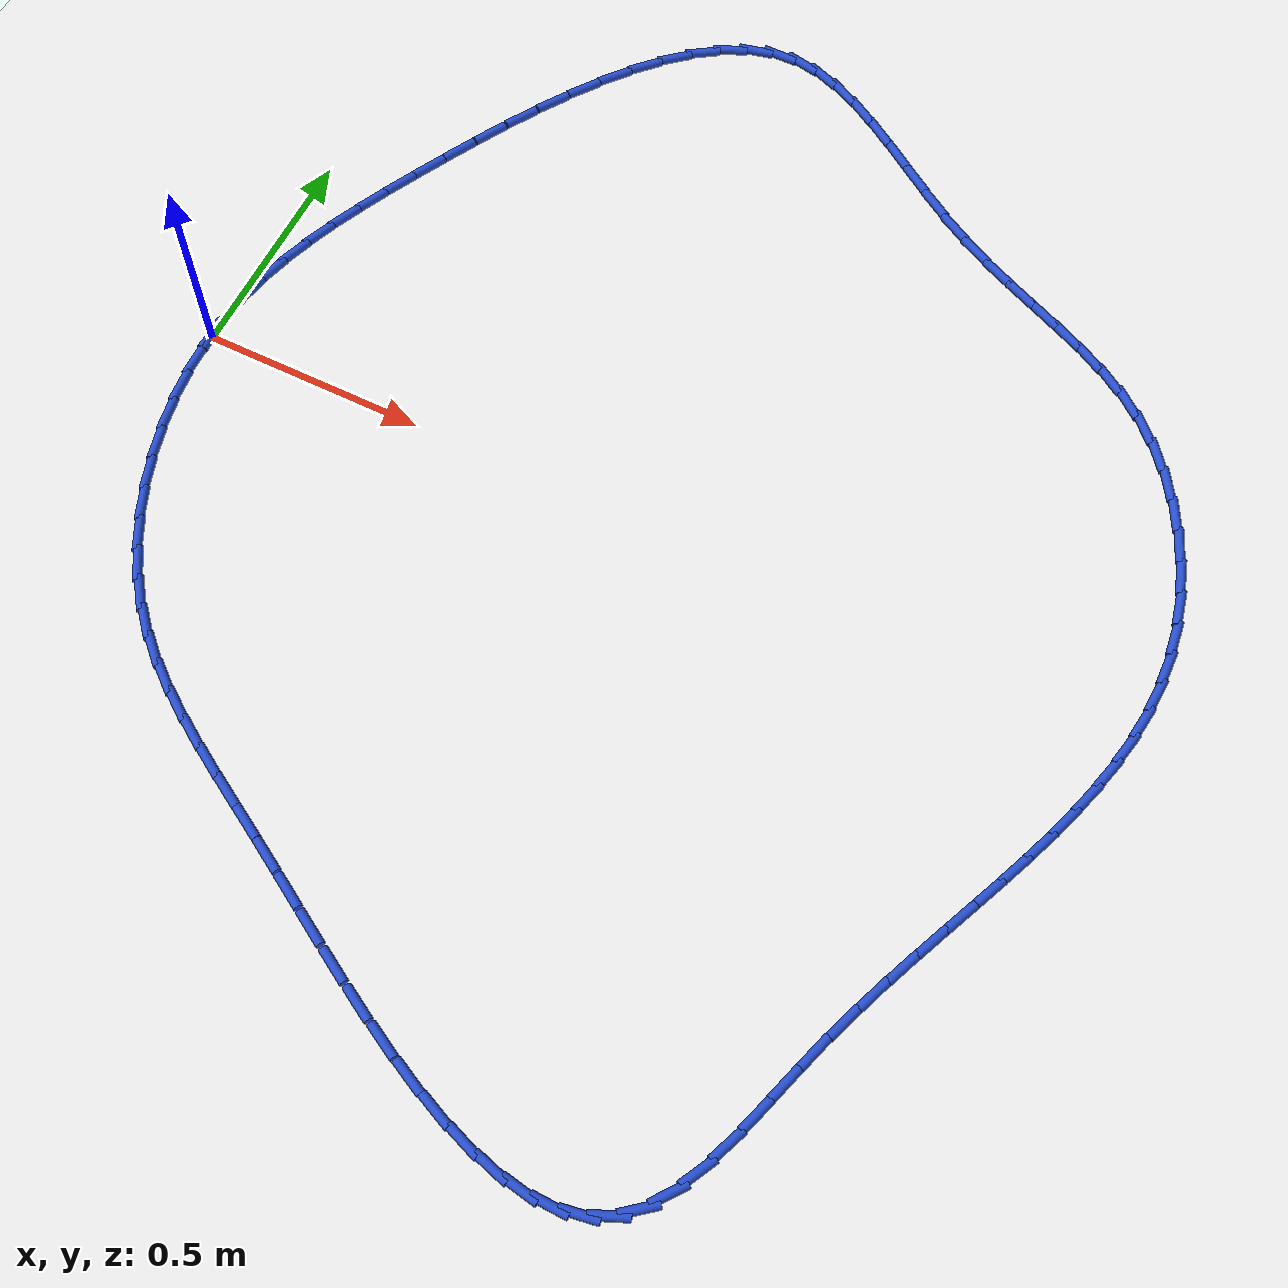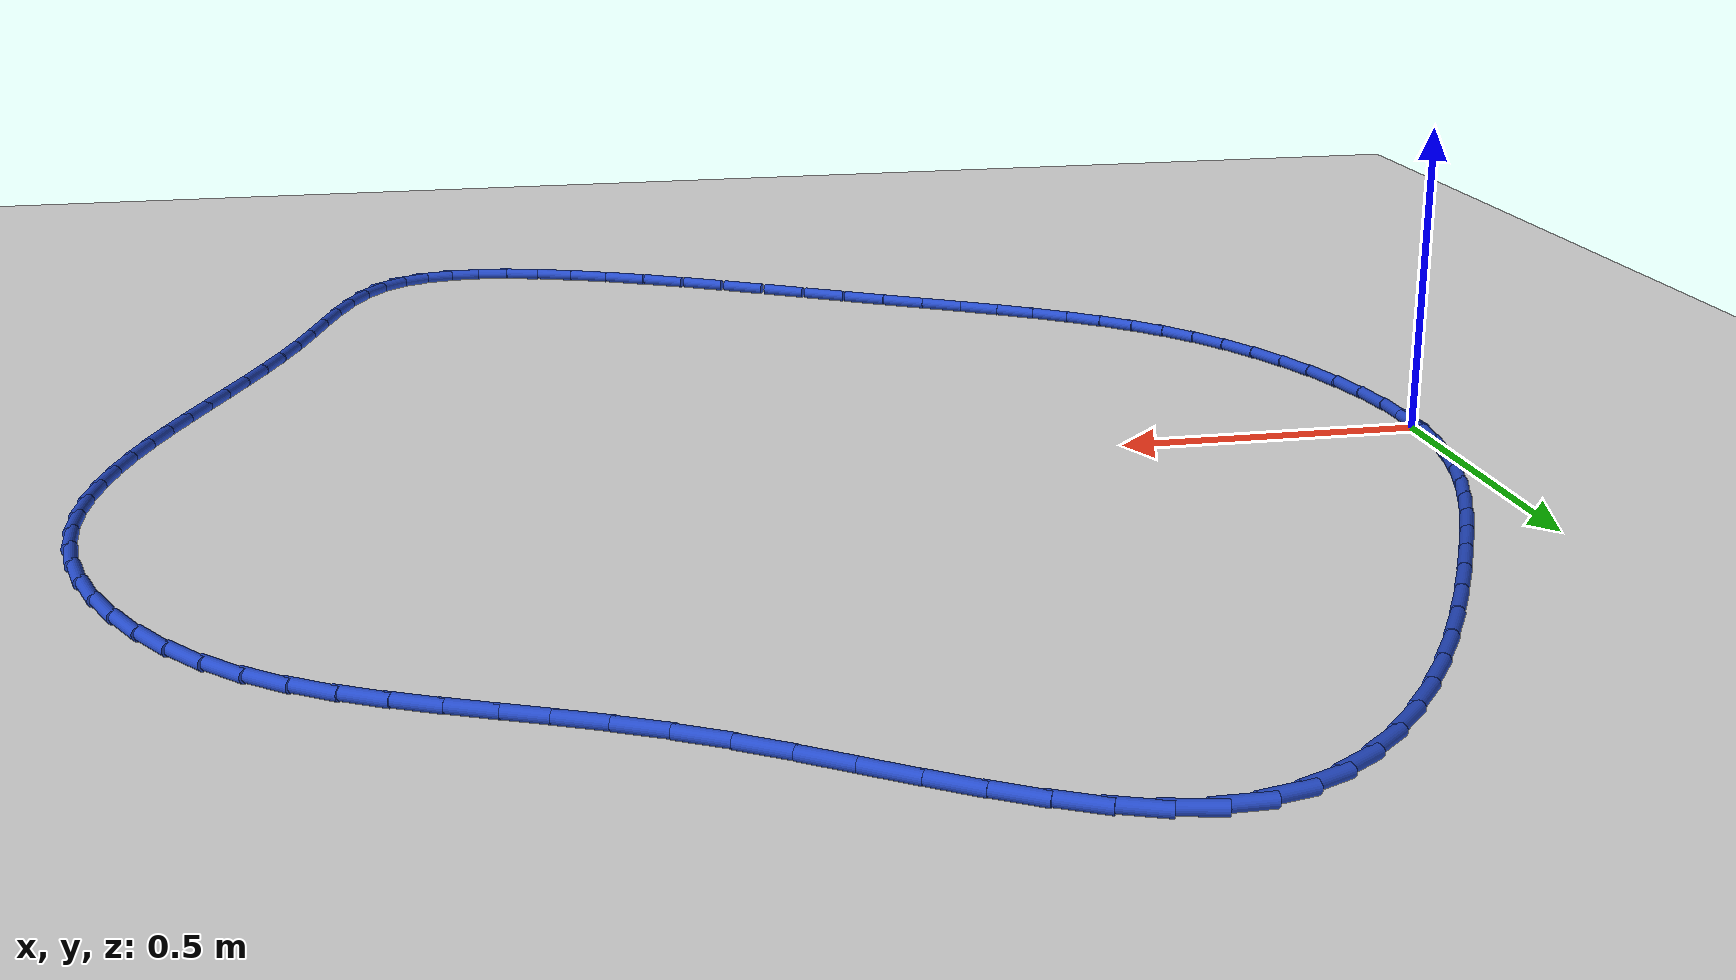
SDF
<sdf version="1.6">
 <world name="default">
  <light name="sun" type="directional">
   <pose>0 0 10 0 -0 0</pose>
   <diffuse>0.8 0.8 0.8 1</diffuse>
   <specular>0.2 0.2 0.2 1</specular>
   <attenuation>
    <range>1000</range>
    <constant>0.9</constant>
    <linear>0.01</linear>
    <quadratic>0.001</quadratic>
   </attenuation>
   <direction>-0.5 0.1 -0.9</direction>
  </light>
  <model name="ground_plane">
   <static>1</static>
   <link name="link">
    <collision name="collision">
     <geometry><plane><normal>0 0 1</normal><size>100 100</size></plane></geometry>
     <surface><friction><ode><mu>100</mu><mu2>50</mu2></ode></friction></surface>
    </collision>
    <visual name="visual">
     <cast_shadows>0</cast_shadows>
     <geometry><plane><normal>0 0 1</normal><size>100 100</size></plane></geometry>
     <material>
      <script><uri>file://media/materials/scripts/gazebo.material</uri><name>Gazebo/WhiteGlow</name></script>
     </material>
    </visual>
   </link>
  </model>
  <gravity>0 0 -9.8</gravity>
  <magnetic_field>6e-06 2.3e-05 -4.2e-05</magnetic_field>
  <atmosphere type="adiabatic"/>
  <physics name="default_physics" default="0" type="ode">
   <max_step_size>0.001</max_step_size>
   <real_time_factor>1</real_time_factor>
   <real_time_update_rate>1000</real_time_update_rate>
  </physics>
  <scene><ambient>0.4 0.4 0.4 1</ambient><background>0.7 0.7 0.7 1</background><shadows>1</shadows></scene>
  <spherical_coordinates>
   <surface_model>EARTH_WGS84</surface_model>
   <latitude_deg>0</latitude_deg>
   <longitude_deg>0</longitude_deg>
   <elevation>0</elevation>
   <heading_deg>0</heading_deg>
  </spherical_coordinates>
  <model name="line">
   <link name="link_0">
    <pose>-8.326672684688674e-17 4.163336342344337e-17 0.01 0 1.57 1.509918617367187</pose>
    <collision name="collision">
     <geometry><cylinder><radius>0.01</radius><length>0.08</length></cylinder></geometry>
    </collision>
    <visual name="visual">
     <material>
      <script><name>Gazebo/Blue</name><uri>file://media/materials/scripts/gazebo.material</uri></script>
     </material>
     <geometry><cylinder><radius>0.01</radius><length>0.08</length></cylinder></geometry>
    </visual>
   </link>
   <link name="link_1">
    <pose>0.004163144845597832 0.06830087086729018 0.01 0 1.57 1.427283603163248</pose>
    <collision name="collision">
     <geometry><cylinder><radius>0.01</radius><length>0.08</length></cylinder></geometry>
    </collision>
    <visual name="visual">
     <material>
      <script><name>Gazebo/Blue</name><uri>file://media/materials/scripts/gazebo.material</uri></script>
     </material>
     <geometry><cylinder><radius>0.01</radius><length>0.08</length></cylinder></geometry>
    </visual>
   </link>
   <link name="link_2">
    <pose>0.013821201218578168 0.1351357789477298 0.01 0 1.57 1.3509517788325554</pose>
    <collision name="collision">
     <geometry><cylinder><radius>0.01</radius><length>0.08</length></cylinder></geometry>
    </collision>
    <visual name="visual">
     <material>
      <script><name>Gazebo/Blue</name><uri>file://media/materials/scripts/gazebo.material</uri></script>
     </material>
     <geometry><cylinder><radius>0.01</radius><length>0.08</length></cylinder></geometry>
    </visual>
   </link>
   <link name="link_3">
    <pose>0.028535235514489266 0.20098328814943683 0.01 0 1.57 1.2831423150662715</pose>
    <collision name="collision">
     <geometry><cylinder><radius>0.01</radius><length>0.08</length></cylinder></geometry>
    </collision>
    <visual name="visual">
     <material>
      <script><name>Gazebo/Blue</name><uri>file://media/materials/scripts/gazebo.material</uri></script>
     </material>
     <geometry><cylinder><radius>0.01</radius><length>0.08</length></cylinder></geometry>
    </visual>
   </link>
   <link name="link_4">
    <pose>0.04786631412887949 0.2663219623805297 0.01 0 1.57 1.22526563125711</pose>
    <collision name="collision">
     <geometry><cylinder><radius>0.01</radius><length>0.08</length></cylinder></geometry>
    </collision>
    <visual name="visual">
     <material>
      <script><name>Gazebo/Blue</name><uri>file://media/materials/scripts/gazebo.material</uri></script>
     </material>
     <geometry><cylinder><radius>0.01</radius><length>0.08</length></cylinder></geometry>
    </visual>
   </link>
   <link name="link_5">
    <pose>0.07137550345729712 0.33163036554912645 0.01 0 1.57 1.1779538046361073</pose>
    <collision name="collision">
     <geometry><cylinder><radius>0.01</radius><length>0.08</length></cylinder></geometry>
    </collision>
    <visual name="visual">
     <material>
      <script><name>Gazebo/Blue</name><uri>file://media/materials/scripts/gazebo.material</uri></script>
     </material>
     <geometry><cylinder><radius>0.01</radius><length>0.08</length></cylinder></geometry>
    </visual>
   </link>
   <link name="link_6">
    <pose>0.0986238698952906 0.3973870615633456 0.01 0 1.57 1.1412160527245678</pose>
    <collision name="collision">
     <geometry><cylinder><radius>0.01</radius><length>0.08</length></cylinder></geometry>
    </collision>
    <visual name="visual">
     <material>
      <script><name>Gazebo/Blue</name><uri>file://media/materials/scripts/gazebo.material</uri></script>
     </material>
     <geometry><cylinder><radius>0.01</radius><length>0.08</length></cylinder></geometry>
    </visual>
   </link>
   <link name="link_7">
    <pose>0.12917247983840816 0.464070614331305 0.01 0 1.57 1.1146322133717996</pose>
    <collision name="collision">
     <geometry><cylinder><radius>0.01</radius><length>0.08</length></cylinder></geometry>
    </collision>
    <visual name="visual">
     <material>
      <script><name>Gazebo/Blue</name><uri>file://media/materials/scripts/gazebo.material</uri></script>
     </material>
     <geometry><cylinder><radius>0.01</radius><length>0.08</length></cylinder></geometry>
    </visual>
   </link>
   <link name="link_8">
    <pose>0.16258239968219815 0.5321595877611229 0.01 0 1.57 1.0975058158893696</pose>
    <collision name="collision">
     <geometry><cylinder><radius>0.01</radius><length>0.08</length></cylinder></geometry>
    </collision>
    <visual name="visual">
     <material>
      <script><name>Gazebo/Blue</name><uri>file://media/materials/scripts/gazebo.material</uri></script>
     </material>
     <geometry><cylinder><radius>0.01</radius><length>0.08</length></cylinder></geometry>
    </visual>
   </link>
   <link name="link_9">
    <pose>0.19841520753505681 0.6021301795717481 0.01 0 1.57 1.0851154001117385</pose>
    <collision name="collision">
     <geometry><cylinder><radius>0.01</radius><length>0.08</length></cylinder></geometry>
    </collision>
    <visual name="visual">
     <material>
      <script><name>Gazebo/Blue</name><uri>file://media/materials/scripts/gazebo.material</uri></script>
     </material>
     <geometry><cylinder><radius>0.01</radius><length>0.08</length></cylinder></geometry>
    </visual>
   </link>
   <link name="link_10">
    <pose>0.2363375416401174 0.6739727834730438 0.01 0 1.57 1.068318850770059</pose>
    <collision name="collision">
     <geometry><cylinder><radius>0.01</radius><length>0.08</length></cylinder></geometry>
    </collision>
    <visual name="visual">
     <material>
      <script><name>Gazebo/Blue</name><uri>file://media/materials/scripts/gazebo.material</uri></script>
     </material>
     <geometry><cylinder><radius>0.01</radius><length>0.08</length></cylinder></geometry>
    </visual>
   </link>
   <link name="link_11">
    <pose>0.2762487841703746 0.7466015720706491 0.01 0 1.57 1.0455895412298761</pose>
    <collision name="collision">
     <geometry><cylinder><radius>0.01</radius><length>0.08</length></cylinder></geometry>
    </collision>
    <visual name="visual">
     <material>
      <script><name>Gazebo/Blue</name><uri>file://media/materials/scripts/gazebo.material</uri></script>
     </material>
     <geometry><cylinder><radius>0.01</radius><length>0.08</length></cylinder></geometry>
    </visual>
   </link>
   <link name="link_12">
    <pose>0.3180795535410755 0.8187862798181562 0.01 0 1.57 1.0161644532291065</pose>
    <collision name="collision">
     <geometry><cylinder><radius>0.01</radius><length>0.08</length></cylinder></geometry>
    </collision>
    <visual name="visual">
     <material>
      <script><name>Gazebo/Blue</name><uri>file://media/materials/scripts/gazebo.material</uri></script>
     </material>
     <geometry><cylinder><radius>0.01</radius><length>0.08</length></cylinder></geometry>
    </visual>
   </link>
   <link name="link_13">
    <pose>0.3617604681674676 0.8892966411691583 0.01 0 1.57 0.9787986002954909</pose>
    <collision name="collision">
     <geometry><cylinder><radius>0.01</radius><length>0.08</length></cylinder></geometry>
    </collision>
    <visual name="visual">
     <material>
      <script><name>Gazebo/Blue</name><uri>file://media/materials/scripts/gazebo.material</uri></script>
     </material>
     <geometry><cylinder><radius>0.01</radius><length>0.08</length></cylinder></geometry>
    </visual>
   </link>
   <link name="link_14">
    <pose>0.40722214646479815 0.9569023905772484 0.01 0 1.57 0.9316461329094872</pose>
    <collision name="collision">
     <geometry><cylinder><radius>0.01</radius><length>0.08</length></cylinder></geometry>
    </collision>
    <visual name="visual">
     <material>
      <script><name>Gazebo/Blue</name><uri>file://media/materials/scripts/gazebo.material</uri></script>
     </material>
     <geometry><cylinder><radius>0.01</radius><length>0.08</length></cylinder></geometry>
    </visual>
   </link>
   <link name="link_15">
    <pose>0.45439520684831436 1.0203732624960187 0.01 0 1.57 0.8720734549618963</pose>
    <collision name="collision">
     <geometry><cylinder><radius>0.01</radius><length>0.08</length></cylinder></geometry>
    </collision>
    <visual name="visual">
     <material>
      <script><name>Gazebo/Blue</name><uri>file://media/materials/scripts/gazebo.material</uri></script>
     </material>
     <geometry><cylinder><radius>0.01</radius><length>0.08</length></cylinder></geometry>
    </visual>
   </link>
   <link name="link_16">
    <pose>0.5032102677332636 1.0784789913790627 0.01 0 1.57 0.7964150143573706</pose>
    <collision name="collision">
     <geometry><cylinder><radius>0.01</radius><length>0.08</length></cylinder></geometry>
    </collision>
    <visual name="visual">
     <material>
      <script><name>Gazebo/Blue</name><uri>file://media/materials/scripts/gazebo.material</uri></script>
     </material>
     <geometry><cylinder><radius>0.01</radius><length>0.08</length></cylinder></geometry>
    </visual>
   </link>
   <link name="link_17">
    <pose>0.5535979475348932 1.1299893116799722 0.01 0 1.57 0.6997466298670718</pose>
    <collision name="collision">
     <geometry><cylinder><radius>0.01</radius><length>0.08</length></cylinder></geometry>
    </collision>
    <visual name="visual">
     <material>
      <script><name>Gazebo/Blue</name><uri>file://media/materials/scripts/gazebo.material</uri></script>
     </material>
     <geometry><cylinder><radius>0.01</radius><length>0.08</length></cylinder></geometry>
    </visual>
   </link>
   <link name="link_18">
    <pose>0.6054888646684503 1.1736739578523416 0.01 0 1.57 0.5759480228212056</pose>
    <collision name="collision">
     <geometry><cylinder><radius>0.01</radius><length>0.08</length></cylinder></geometry>
    </collision>
    <visual name="visual">
     <material>
      <script><name>Gazebo/Blue</name><uri>file://media/materials/scripts/gazebo.material</uri></script>
     </material>
     <geometry><cylinder><radius>0.01</radius><length>0.08</length></cylinder></geometry>
    </visual>
   </link>
   <link name="link_19">
    <pose>0.6588136375491823 1.208302664349762 0.01 0 1.57 0.41877646333151075</pose>
    <collision name="collision">
     <geometry><cylinder><radius>0.01</radius><length>0.08</length></cylinder></geometry>
    </collision>
    <visual name="visual">
     <material>
      <script><name>Gazebo/Blue</name><uri>file://media/materials/scripts/gazebo.material</uri></script>
     </material>
     <geometry><cylinder><radius>0.01</radius><length>0.08</length></cylinder></geometry>
    </visual>
   </link>
   <link name="link_20">
    <pose>0.7135028845923367 1.2326451656258275 0.01 0 1.57 0.22521374868437743</pose>
    <collision name="collision">
     <geometry><cylinder><radius>0.01</radius><length>0.08</length></cylinder></geometry>
    </collision>
    <visual name="visual">
     <material>
      <script><name>Gazebo/Blue</name><uri>file://media/materials/scripts/gazebo.material</uri></script>
     </material>
     <geometry><cylinder><radius>0.01</radius><length>0.08</length></cylinder></geometry>
    </visual>
   </link>
   <link name="link_21">
    <pose>0.7694872242131603 1.24547119613413 0.01 0 1.57 0.001921975539843624</pose>
    <collision name="collision">
     <geometry><cylinder><radius>0.01</radius><length>0.08</length></cylinder></geometry>
    </collision>
    <visual name="visual">
     <material>
      <script><name>Gazebo/Blue</name><uri>file://media/materials/scripts/gazebo.material</uri></script>
     </material>
     <geometry><cylinder><radius>0.01</radius><length>0.08</length></cylinder></geometry>
    </visual>
   </link>
   <link name="link_22">
    <pose>0.8266974569139113 1.2455811529374028 0.01 0 1.57 -0.21017691352712012</pose>
    <collision name="collision">
     <geometry><cylinder><radius>0.01</radius><length>0.08</length></cylinder></geometry>
    </collision>
    <visual name="visual">
     <material>
      <script><name>Gazebo/Blue</name><uri>file://media/materials/scripts/gazebo.material</uri></script>
     </material>
     <geometry><cylinder><radius>0.01</radius><length>0.08</length></cylinder></geometry>
    </visual>
   </link>
   <link name="link_23">
    <pose>0.8850724163240022 1.2331281745037297 0.01 0 1.57 -0.36901515002211005</pose>
    <collision name="collision">
     <geometry><cylinder><radius>0.01</radius><length>0.08</length></cylinder></geometry>
    </collision>
    <visual name="visual">
     <material>
      <script><name>Gazebo/Blue</name><uri>file://media/materials/scripts/gazebo.material</uri></script>
     </material>
     <geometry><cylinder><radius>0.01</radius><length>0.08</length></cylinder></geometry>
    </visual>
   </link>
   <link name="link_24">
    <pose>0.9445619598275203 1.2101217485286209 0.01 0 1.57 -0.4785743300144541</pose>
    <collision name="collision">
     <geometry><cylinder><radius>0.01</radius><length>0.08</length></cylinder></geometry>
    </collision>
    <visual name="visual">
     <material>
      <script><name>Gazebo/Blue</name><uri>file://media/materials/scripts/gazebo.material</uri></script>
     </material>
     <geometry><cylinder><radius>0.01</radius><length>0.08</length></cylinder></geometry>
    </visual>
   </link>
   <link name="link_25">
    <pose>1.0051167438639577 1.1787059199368457 0.01 0 1.57 -0.5491955045564234</pose>
    <collision name="collision">
     <geometry><cylinder><radius>0.01</radius><length>0.08</length></cylinder></geometry>
    </collision>
    <visual name="visual">
     <material>
      <script><name>Gazebo/Blue</name><uri>file://media/materials/scripts/gazebo.material</uri></script>
     </material>
     <geometry><cylinder><radius>0.01</radius><length>0.08</length></cylinder></geometry>
    </visual>
   </link>
   <link name="link_26">
    <pose>1.0666874248728075 1.1410247336531751 0.01 0 1.57 -0.5892305078094898</pose>
    <collision name="collision">
     <geometry><cylinder><radius>0.01</radius><length>0.08</length></cylinder></geometry>
    </collision>
    <visual name="visual">
     <material>
      <script><name>Gazebo/Blue</name><uri>file://media/materials/scripts/gazebo.material</uri></script>
     </material>
     <geometry><cylinder><radius>0.01</radius><length>0.08</length></cylinder></geometry>
    </visual>
   </link>
   <link name="link_27">
    <pose>1.1292246592935613 1.0992222346023781 0.01 0 1.57 -0.6039424107334344</pose>
    <collision name="collision">
     <geometry><cylinder><radius>0.01</radius><length>0.08</length></cylinder></geometry>
    </collision>
    <visual name="visual">
     <material>
      <script><name>Gazebo/Blue</name><uri>file://media/materials/scripts/gazebo.material</uri></script>
     </material>
     <geometry><cylinder><radius>0.01</radius><length>0.08</length></cylinder></geometry>
    </visual>
   </link>
   <link name="link_28">
    <pose>1.1926791035657116 1.0554424677092253 0.01 0 1.57 -0.5958340059740744</pose>
    <collision name="collision">
     <geometry><cylinder><radius>0.01</radius><length>0.08</length></cylinder></geometry>
    </collision>
    <visual name="visual">
     <material>
      <script><name>Gazebo/Blue</name><uri>file://media/materials/scripts/gazebo.material</uri></script>
     </material>
     <geometry><cylinder><radius>0.01</radius><length>0.08</length></cylinder></geometry>
    </visual>
   </link>
   <link name="link_29">
    <pose>1.2570014141287504 1.011829477898487 0.01 0 1.57 -0.5650765928511537</pose>
    <collision name="collision">
     <geometry><cylinder><radius>0.01</radius><length>0.08</length></cylinder></geometry>
    </collision>
    <visual name="visual">
     <material>
      <script><name>Gazebo/Blue</name><uri>file://media/materials/scripts/gazebo.material</uri></script>
     </material>
     <geometry><cylinder><radius>0.01</radius><length>0.08</length></cylinder></geometry>
    </visual>
   </link>
   <link name="link_30">
    <pose>1.3221422474221716 0.9705273100949331 0.01 0 1.57 -0.5117897686025339</pose>
    <collision name="collision">
     <geometry><cylinder><radius>0.01</radius><length>0.08</length></cylinder></geometry>
    </collision>
    <visual name="visual">
     <material>
      <script><name>Gazebo/Blue</name><uri>file://media/materials/scripts/gazebo.material</uri></script>
     </material>
     <geometry><cylinder><radius>0.01</radius><length>0.08</length></cylinder></geometry>
    </visual>
   </link>
   <link name="link_31">
    <pose>1.3880283204430959 0.9335183894514202 0.01 0 1.57 -0.45920253581437465</pose>
    <collision name="collision">
     <geometry><cylinder><radius>0.01</radius><length>0.08</length></cylinder></geometry>
    </collision>
    <visual name="visual">
     <material>
      <script><name>Gazebo/Blue</name><uri>file://media/materials/scripts/gazebo.material</uri></script>
     </material>
     <geometry><cylinder><radius>0.01</radius><length>0.08</length></cylinder></geometry>
    </visual>
   </link>
   <link name="link_32">
    <pose>1.4542859263887293 0.9007569223649966 0.01 0 1.57 -0.4256228702087782</pose>
    <collision name="collision">
     <geometry><cylinder><radius>0.01</radius><length>0.08</length></cylinder></geometry>
    </collision>
    <visual name="visual">
     <material>
      <script><name>Gazebo/Blue</name><uri>file://media/materials/scripts/gazebo.material</uri></script>
     </material>
     <geometry><cylinder><radius>0.01</radius><length>0.08</length></cylinder></geometry>
    </visual>
   </link>
   <link name="link_33">
    <pose>1.5203364843434222 0.8708139707601605 0.01 0 1.57 -0.4127749224147906</pose>
    <collision name="collision">
     <geometry><cylinder><radius>0.01</radius><length>0.08</length></cylinder></geometry>
    </collision>
    <visual name="visual">
     <material>
      <script><name>Gazebo/Blue</name><uri>file://media/materials/scripts/gazebo.material</uri></script>
     </material>
     <geometry><cylinder><radius>0.01</radius><length>0.08</length></cylinder></geometry>
    </visual>
   </link>
   <link name="link_34">
    <pose>1.5855974660784746 0.8422339474931219 0.01 0 1.57 -0.4218471402897387</pose>
    <collision name="collision">
     <geometry><cylinder><radius>0.01</radius><length>0.08</length></cylinder></geometry>
    </collision>
    <visual name="visual">
     <material>
      <script><name>Gazebo/Blue</name><uri>file://media/materials/scripts/gazebo.material</uri></script>
     </material>
     <geometry><cylinder><radius>0.01</radius><length>0.08</length></cylinder></geometry>
    </visual>
   </link>
   <link name="link_35">
    <pose>1.6494863433651883 0.8135612654200919 0.01 0 1.57 -0.4539627005254168</pose>
    <collision name="collision">
     <geometry><cylinder><radius>0.01</radius><length>0.08</length></cylinder></geometry>
    </collision>
    <visual name="visual">
     <material>
      <script><name>Gazebo/Blue</name><uri>file://media/materials/scripts/gazebo.material</uri></script>
     </material>
     <geometry><cylinder><radius>0.01</radius><length>0.08</length></cylinder></geometry>
    </visual>
   </link>
   <link name="link_36">
    <pose>1.7114205879748652 0.7833403373972817 0.01 0 1.57 -0.5100062150868597</pose>
    <collision name="collision">
     <geometry><cylinder><radius>0.01</radius><length>0.08</length></cylinder></geometry>
    </collision>
    <visual name="visual">
     <material>
      <script><name>Gazebo/Blue</name><uri>file://media/materials/scripts/gazebo.material</uri></script>
     </material>
     <geometry><cylinder><radius>0.01</radius><length>0.08</length></cylinder></geometry>
    </visual>
   </link>
   <link name="link_37">
    <pose>1.7708176716788069 0.7501155762809023 0.01 0 1.57 -0.5900409046085922</pose>
    <collision name="collision">
     <geometry><cylinder><radius>0.01</radius><length>0.08</length></cylinder></geometry>
    </collision>
    <visual name="visual">
     <material>
      <script><name>Gazebo/Blue</name><uri>file://media/materials/scripts/gazebo.material</uri></script>
     </material>
     <geometry><cylinder><radius>0.01</radius><length>0.08</length></cylinder></geometry>
    </visual>
   </link>
   <link name="link_38">
    <pose>1.8270950662483143 0.7124313949271645 0.01 0 1.57 -0.6923280804904869</pose>
    <collision name="collision">
     <geometry><cylinder><radius>0.01</radius><length>0.08</length></cylinder></geometry>
    </collision>
    <visual name="visual">
     <material>
      <script><name>Gazebo/Blue</name><uri>file://media/materials/scripts/gazebo.material</uri></script>
     </material>
     <geometry><cylinder><radius>0.01</radius><length>0.08</length></cylinder></geometry>
    </visual>
   </link>
   <link name="link_39">
    <pose>1.879670309145416 0.6688329768192938 0.01 0 1.57 -0.8058355245405326</pose>
    <collision name="collision">
     <geometry><cylinder><radius>0.01</radius><length>0.08</length></cylinder></geometry>
    </collision>
    <visual name="visual">
     <material>
      <script><name>Gazebo/Blue</name><uri>file://media/materials/scripts/gazebo.material</uri></script>
     </material>
     <geometry><cylinder><radius>0.01</radius><length>0.08</length></cylinder></geometry>
    </visual>
   </link>
   <link name="link_40">
    <pose>1.928012727902013 0.6184730619232341 0.01 0 1.57 -0.9102293757487766</pose>
    <collision name="collision">
     <geometry><cylinder><radius>0.01</radius><length>0.08</length></cylinder></geometry>
    </collision>
    <visual name="visual">
     <material>
      <script><name>Gazebo/Blue</name><uri>file://media/materials/scripts/gazebo.material</uri></script>
     </material>
     <geometry><cylinder><radius>0.01</radius><length>0.08</length></cylinder></geometry>
    </visual>
   </link>
   <link name="link_41">
    <pose>1.9717363358048992 0.5622017188348972 0.01 0 1.57 -1.0052207143656917</pose>
    <collision name="collision">
     <geometry><cylinder><radius>0.01</radius><length>0.08</length></cylinder></geometry>
    </collision>
    <visual name="visual">
     <material>
      <script><name>Gazebo/Blue</name><uri>file://media/materials/scripts/gazebo.material</uri></script>
     </material>
     <geometry><cylinder><radius>0.01</radius><length>0.08</length></cylinder></geometry>
    </visual>
   </link>
   <link name="link_42">
    <pose>2.0104802173484497 0.5011631299587354 0.01 0 1.57 -1.0939689202617278</pose>
    <collision name="collision">
     <geometry><cylinder><radius>0.01</radius><length>0.08</length></cylinder></geometry>
    </collision>
    <visual name="visual">
     <material>
      <script><name>Gazebo/Blue</name><uri>file://media/materials/scripts/gazebo.material</uri></script>
     </material>
     <geometry><cylinder><radius>0.01</radius><length>0.08</length></cylinder></geometry>
    </visual>
   </link>
   <link name="link_43">
    <pose>2.043883457027039 0.43650147769919984 0.01 0 1.57 -1.1794816774550836</pose>
    <collision name="collision">
     <geometry><cylinder><radius>0.01</radius><length>0.08</length></cylinder></geometry>
    </collision>
    <visual name="visual">
     <material>
      <script><name>Gazebo/Blue</name><uri>file://media/materials/scripts/gazebo.material</uri></script>
     </material>
     <geometry><cylinder><radius>0.01</radius><length>0.08</length></cylinder></geometry>
    </visual>
   </link>
   <link name="link_44">
    <pose>2.0715851393350433 0.36936094446074313 0.01 0 1.57 -1.2647122729361246</pose>
    <collision name="collision">
     <geometry><cylinder><radius>0.01</radius><length>0.08</length></cylinder></geometry>
    </collision>
    <visual name="visual">
     <material>
      <script><name>Gazebo/Blue</name><uri>file://media/materials/scripts/gazebo.material</uri></script>
     </material>
     <geometry><cylinder><radius>0.01</radius><length>0.08</length></cylinder></geometry>
    </visual>
   </link>
   <link name="link_45">
    <pose>2.0932243487668356 0.3008857126478172 0.01 0 1.57 -1.3527274618020635</pose>
    <collision name="collision">
     <geometry><cylinder><radius>0.01</radius><length>0.08</length></cylinder></geometry>
    </collision>
    <visual name="visual">
     <material>
      <script><name>Gazebo/Blue</name><uri>file://media/materials/scripts/gazebo.material</uri></script>
     </material>
     <geometry><cylinder><radius>0.01</radius><length>0.08</length></cylinder></geometry>
    </visual>
   </link>
   <link name="link_46">
    <pose>2.1084401698167925 0.23221996466487385 0.01 0 1.57 -1.4456142704914694</pose>
    <collision name="collision">
     <geometry><cylinder><radius>0.01</radius><length>0.08</length></cylinder></geometry>
    </collision>
    <visual name="visual">
     <material>
      <script><name>Gazebo/Blue</name><uri>file://media/materials/scripts/gazebo.material</uri></script>
     </material>
     <geometry><cylinder><radius>0.01</radius><length>0.08</length></cylinder></geometry>
    </visual>
   </link>
   <link name="link_47">
    <pose>2.1169805554241385 0.16435298480508465 0.01 0 1.57 -1.537537301060313</pose>
    <collision name="collision">
     <geometry><cylinder><radius>0.01</radius><length>0.08</length></cylinder></geometry>
    </collision>
    <visual name="visual">
     <material>
      <script><name>Gazebo/Blue</name><uri>file://media/materials/scripts/gazebo.material</uri></script>
     </material>
     <geometry><cylinder><radius>0.01</radius><length>0.08</length></cylinder></geometry>
    </visual>
   </link>
   <link name="link_48">
    <pose>2.119208187161951 0.09739942096479927 0.01 0 1.57 1.51789728519097</pose>
    <collision name="collision">
     <geometry><cylinder><radius>0.01</radius><length>0.08</length></cylinder></geometry>
    </collision>
    <visual name="visual">
     <material>
      <script><name>Gazebo/Blue</name><uri>file://media/materials/scripts/gazebo.material</uri></script>
     </material>
     <geometry><cylinder><radius>0.01</radius><length>0.08</length></cylinder></geometry>
    </visual>
   </link>
   <link name="link_49">
    <pose>2.1157012963583677 0.031167236674741423 0.01 0 1.57 1.4397027023286784</pose>
    <collision name="collision">
     <geometry><cylinder><radius>0.01</radius><length>0.08</length></cylinder></geometry>
    </collision>
    <visual name="visual">
     <material>
      <script><name>Gazebo/Blue</name><uri>file://media/materials/scripts/gazebo.material</uri></script>
     </material>
     <geometry><cylinder><radius>0.01</radius><length>0.08</length></cylinder></geometry>
    </visual>
   </link>
   <link name="link_50">
    <pose>2.1070383466656417 -0.03453593508530293 0.01 0 1.57 1.3709418940577185</pose>
    <collision name="collision">
     <geometry><cylinder><radius>0.01</radius><length>0.08</length></cylinder></geometry>
    </collision>
    <visual name="visual">
     <material>
      <script><name>Gazebo/Blue</name><uri>file://media/materials/scripts/gazebo.material</uri></script>
     </material>
     <geometry><cylinder><radius>0.01</radius><length>0.08</length></cylinder></geometry>
    </visual>
   </link>
   <link name="link_51">
    <pose>2.093797801736024 -0.09990246133554782 0.01 0 1.57 1.3123841921444064</pose>
    <collision name="collision">
     <geometry><cylinder><radius>0.01</radius><length>0.08</length></cylinder></geometry>
    </collision>
    <visual name="visual">
     <material>
      <script><name>Gazebo/Blue</name><uri>file://media/materials/scripts/gazebo.material</uri></script>
     </material>
     <geometry><cylinder><radius>0.01</radius><length>0.08</length></cylinder></geometry>
    </visual>
   </link>
   <link name="link_52">
    <pose>2.0765581252217693 -0.1651247090962074 0.01 0 1.57 1.2642396988889304</pose>
    <collision name="collision">
     <geometry><cylinder><radius>0.01</radius><length>0.08</length></cylinder></geometry>
    </collision>
    <visual name="visual">
     <material>
      <script><name>Gazebo/Blue</name><uri>file://media/materials/scripts/gazebo.material</uri></script>
     </material>
     <geometry><cylinder><radius>0.01</radius><length>0.08</length></cylinder></geometry>
    </visual>
   </link>
   <link name="link_53">
    <pose>2.0558977807751297 -0.2303950453874959 0.01 0 1.57 1.2263403058190643</pose>
    <collision name="collision">
     <geometry><cylinder><radius>0.01</radius><length>0.08</length></cylinder></geometry>
    </collision>
    <visual name="visual">
     <material>
      <script><name>Gazebo/Blue</name><uri>file://media/materials/scripts/gazebo.material</uri></script>
     </material>
     <geometry><cylinder><radius>0.01</radius><length>0.08</length></cylinder></geometry>
    </visual>
   </link>
   <link name="link_54">
    <pose>2.032395232048358 -0.2959058372296275 0.01 0 1.57 1.1983049304103888</pose>
    <collision name="collision">
     <geometry><cylinder><radius>0.01</radius><length>0.08</length></cylinder></geometry>
    </collision>
    <visual name="visual">
     <material>
      <script><name>Gazebo/Blue</name><uri>file://media/materials/scripts/gazebo.material</uri></script>
     </material>
     <geometry><cylinder><radius>0.01</radius><length>0.08</length></cylinder></geometry>
    </visual>
   </link>
   <link name="link_55">
    <pose>2.0066289426937067 -0.36184945164281623 0.01 0 1.57 1.179664291831227</pose>
    <collision name="collision">
     <geometry><cylinder><radius>0.01</radius><length>0.08</length></cylinder></geometry>
    </collision>
    <visual name="visual">
     <material>
      <script><name>Gazebo/Blue</name><uri>file://media/materials/scripts/gazebo.material</uri></script>
     </material>
     <geometry><cylinder><radius>0.01</radius><length>0.08</length></cylinder></geometry>
    </visual>
   </link>
   <link name="link_56">
    <pose>1.9791773763634293 -0.4284182556472765 0.01 0 1.57 1.1699420255353417</pose>
    <collision name="collision">
     <geometry><cylinder><radius>0.01</radius><length>0.08</length></cylinder></geometry>
    </collision>
    <visual name="visual">
     <material>
      <script><name>Gazebo/Blue</name><uri>file://media/materials/scripts/gazebo.material</uri></script>
     </material>
     <geometry><cylinder><radius>0.01</radius><length>0.08</length></cylinder></geometry>
    </visual>
   </link>
   <link name="link_57">
    <pose>1.9506189967097782 -0.4958046162632222 0.01 0 1.57 1.1686989713315168</pose>
    <collision name="collision">
     <geometry><cylinder><radius>0.01</radius><length>0.08</length></cylinder></geometry>
    </collision>
    <visual name="visual">
     <material>
      <script><name>Gazebo/Blue</name><uri>file://media/materials/scripts/gazebo.material</uri></script>
     </material>
     <geometry><cylinder><radius>0.01</radius><length>0.08</length></cylinder></geometry>
    </visual>
   </link>
   <link name="link_58">
    <pose>1.9215322673850066 -0.5642009005108669 0.01 0 1.57 1.175549755145388</pose>
    <collision name="collision">
     <geometry><cylinder><radius>0.01</radius><length>0.08</length></cylinder></geometry>
    </collision>
    <visual name="visual">
     <material>
      <script><name>Gazebo/Blue</name><uri>file://media/materials/scripts/gazebo.material</uri></script>
     </material>
     <geometry><cylinder><radius>0.01</radius><length>0.08</length></cylinder></geometry>
    </visual>
   </link>
   <link name="link_59">
    <pose>1.8924956520413663 -0.6337994754104262 0.01 0 1.57 1.1901594841048444</pose>
    <collision name="collision">
     <geometry><cylinder><radius>0.01</radius><length>0.08</length></cylinder></geometry>
    </collision>
    <visual name="visual">
     <material>
      <script><name>Gazebo/Blue</name><uri>file://media/materials/scripts/gazebo.material</uri></script>
     </material>
     <geometry><cylinder><radius>0.01</radius><length>0.08</length></cylinder></geometry>
    </visual>
   </link>
   <link name="link_60">
    <pose>1.8640876143311107 -0.7047927079821136 0.01 0 1.57 1.2122261871192892</pose>
    <collision name="collision">
     <geometry><cylinder><radius>0.01</radius><length>0.08</length></cylinder></geometry>
    </collision>
    <visual name="visual">
     <material>
      <script><name>Gazebo/Blue</name><uri>file://media/materials/scripts/gazebo.material</uri></script>
     </material>
     <geometry><cylinder><radius>0.01</radius><length>0.08</length></cylinder></geometry>
    </visual>
   </link>
   <link name="link_61">
    <pose>1.8368866179064927 -0.7773729652461433 0.01 0 1.57 1.2414495009510629</pose>
    <collision name="collision">
     <geometry><cylinder><radius>0.01</radius><length>0.08</length></cylinder></geometry>
    </collision>
    <visual name="visual">
     <material>
      <script><name>Gazebo/Blue</name><uri>file://media/materials/scripts/gazebo.material</uri></script>
     </material>
     <geometry><cylinder><radius>0.01</radius><length>0.08</length></cylinder></geometry>
    </visual>
   </link>
   <link name="link_62">
    <pose>1.8114709314205972 -0.8517323614669412 0.01 0 1.57 1.2701014870622807</pose>
    <collision name="collision">
     <geometry><cylinder><radius>0.01</radius><length>0.08</length></cylinder></geometry>
    </collision>
    <visual name="visual">
     <material>
      <script><name>Gazebo/Blue</name><uri>file://media/materials/scripts/gazebo.material</uri></script>
     </material>
     <geometry><cylinder><radius>0.01</radius><length>0.08</length></cylinder></geometry>
    </visual>
   </link>
   <link name="link_63">
    <pose>1.7879781115296935 -0.9274917648399659 0.01 0 1.57 1.2755108905940487</pose>
    <collision name="collision">
     <geometry><cylinder><radius>0.01</radius><length>0.08</length></cylinder></geometry>
    </collision>
    <visual name="visual">
     <material>
      <script><name>Gazebo/Blue</name><uri>file://media/materials/scripts/gazebo.material</uri></script>
     </material>
     <geometry><cylinder><radius>0.01</radius><length>0.08</length></cylinder></geometry>
    </visual>
   </link>
   <link name="link_64">
    <pose>1.765166875167699 -1.0024848065968022 0.01 0 1.57 1.2523633198265391</pose>
    <collision name="collision">
     <geometry><cylinder><radius>0.01</radius><length>0.08</length></cylinder></geometry>
    </collision>
    <visual name="visual">
     <material>
      <script><name>Gazebo/Blue</name><uri>file://media/materials/scripts/gazebo.material</uri></script>
     </material>
     <geometry><cylinder><radius>0.01</radius><length>0.08</length></cylinder></geometry>
    </visual>
   </link>
   <link name="link_65">
    <pose>1.741527014144334 -1.074196540165042 0.01 0 1.57 1.1953680491843286</pose>
    <collision name="collision">
     <geometry><cylinder><radius>0.01</radius><length>0.08</length></cylinder></geometry>
    </collision>
    <visual name="visual">
     <material>
      <script><name>Gazebo/Blue</name><uri>file://media/materials/scripts/gazebo.material</uri></script>
     </material>
     <geometry><cylinder><radius>0.01</radius><length>0.08</length></cylinder></geometry>
    </visual>
   </link>
   <link name="link_66">
    <pose>1.7155483202693198 -1.140112018972277 0.01 0 1.57 1.0930070459203545</pose>
    <collision name="collision">
     <geometry><cylinder><radius>0.01</radius><length>0.08</length></cylinder></geometry>
    </collision>
    <visual name="visual">
     <material>
      <script><name>Gazebo/Blue</name><uri>file://media/materials/scripts/gazebo.material</uri></script>
     </material>
     <geometry><cylinder><radius>0.01</radius><length>0.08</length></cylinder></geometry>
    </visual>
   </link>
   <link name="link_67">
    <pose>1.6857205853523778 -1.1977162964461 0.01 0 1.57 0.9258822179905558</pose>
    <collision name="collision">
     <geometry><cylinder><radius>0.01</radius><length>0.08</length></cylinder></geometry>
    </collision>
    <visual name="visual">
     <material>
      <script><name>Gazebo/Blue</name><uri>file://media/materials/scripts/gazebo.material</uri></script>
     </material>
     <geometry><cylinder><radius>0.01</radius><length>0.08</length></cylinder></geometry>
    </visual>
   </link>
   <link name="link_68">
    <pose>1.650533601203229 -1.2444944260141022 0.01 0 1.57 0.6786763607323374</pose>
    <collision name="collision">
     <geometry><cylinder><radius>0.01</radius><length>0.08</length></cylinder></geometry>
    </collision>
    <visual name="visual">
     <material>
      <script><name>Gazebo/Blue</name><uri>file://media/materials/scripts/gazebo.material</uri></script>
     </material>
     <geometry><cylinder><radius>0.01</radius><length>0.08</length></cylinder></geometry>
    </visual>
   </link>
   <link name="link_69">
    <pose>1.6086717024093302 -1.278254980067199 0.01 0 1.57 0.4069094655486155</pose>
    <collision name="collision">
     <geometry><cylinder><radius>0.01</radius><length>0.08</length></cylinder></geometry>
    </collision>
    <visual name="visual">
     <material>
      <script><name>Gazebo/Blue</name><uri>file://media/materials/scripts/gazebo.material</uri></script>
     </material>
     <geometry><cylinder><radius>0.01</radius><length>0.08</length></cylinder></geometry>
    </visual>
   </link>
   <link name="link_70">
    <pose>1.5602199189345325 -1.2991358465400547 0.01 0 1.57 0.16697853641116944</pose>
    <collision name="collision">
     <geometry><cylinder><radius>0.01</radius><length>0.08</length></cylinder></geometry>
    </collision>
    <visual name="visual">
     <material>
      <script><name>Gazebo/Blue</name><uri>file://media/materials/scripts/gazebo.material</uri></script>
     </material>
     <geometry><cylinder><radius>0.01</radius><length>0.08</length></cylinder></geometry>
    </visual>
   </link>
   <link name="link_71">
    <pose>1.505876848486686 -1.3082952586239278 0.01 0 1.57 -0.023503277283315464</pose>
    <collision name="collision">
     <geometry><cylinder><radius>0.01</radius><length>0.08</length></cylinder></geometry>
    </collision>
    <visual name="visual">
     <material>
      <script><name>Gazebo/Blue</name><uri>file://media/materials/scripts/gazebo.material</uri></script>
     </material>
     <geometry><cylinder><radius>0.01</radius><length>0.08</length></cylinder></geometry>
    </visual>
   </link>
   <link name="link_72">
    <pose>1.4463436908028091 -1.3068957766086673 0.01 0 1.57 -0.16705497093331</pose>
    <collision name="collision">
     <geometry><cylinder><radius>0.01</radius><length>0.08</length></cylinder></geometry>
    </collision>
    <visual name="visual">
     <material>
      <script><name>Gazebo/Blue</name><uri>file://media/materials/scripts/gazebo.material</uri></script>
     </material>
     <geometry><cylinder><radius>0.01</radius><length>0.08</length></cylinder></geometry>
    </visual>
   </link>
   <link name="link_73">
    <pose>1.3823216456199203 -1.2960999607841215 0.01 0 1.57 -0.2735947746771391</pose>
    <collision name="collision">
     <geometry><cylinder><radius>0.01</radius><length>0.08</length></cylinder></geometry>
    </collision>
    <visual name="visual">
     <material>
      <script><name>Gazebo/Blue</name><uri>file://media/materials/scripts/gazebo.material</uri></script>
     </material>
     <geometry><cylinder><radius>0.01</radius><length>0.08</length></cylinder></geometry>
    </visual>
   </link>
   <link name="link_74">
    <pose>1.314511912675038 -1.2770703714401395 0.01 0 1.57 -0.3527561654538513</pose>
    <collision name="collision">
     <geometry><cylinder><radius>0.01</radius><length>0.08</length></cylinder></geometry>
    </collision>
    <visual name="visual">
     <material>
      <script><name>Gazebo/Blue</name><uri>file://media/materials/scripts/gazebo.material</uri></script>
     </material>
     <geometry><cylinder><radius>0.01</radius><length>0.08</length></cylinder></geometry>
    </visual>
   </link>
   <link name="link_75">
    <pose>1.2436156917051817 -1.2509695688665707 0.01 0 1.57 -0.411823806985271</pose>
    <collision name="collision">
     <geometry><cylinder><radius>0.01</radius><length>0.08</length></cylinder></geometry>
    </collision>
    <visual name="visual">
     <material>
      <script><name>Gazebo/Blue</name><uri>file://media/materials/scripts/gazebo.material</uri></script>
     </material>
     <geometry><cylinder><radius>0.01</radius><length>0.08</length></cylinder></geometry>
    </visual>
   </link>
   <link name="link_76">
    <pose>1.1703341824473694 -1.2189601133532626 0.01 0 1.57 -0.4558566323963697</pose>
    <collision name="collision">
     <geometry><cylinder><radius>0.01</radius><length>0.08</length></cylinder></geometry>
    </collision>
    <visual name="visual">
     <material>
      <script><name>Gazebo/Blue</name><uri>file://media/materials/scripts/gazebo.material</uri></script>
     </material>
     <geometry><cylinder><radius>0.01</radius><length>0.08</length></cylinder></geometry>
    </visual>
   </link>
   <link name="link_77">
    <pose>1.0953685846386203 -1.1822045651900654 0.01 0 1.57 -0.48824611868873213</pose>
    <collision name="collision">
     <geometry><cylinder><radius>0.01</radius><length>0.08</length></cylinder></geometry>
    </collision>
    <visual name="visual">
     <material>
      <script><name>Gazebo/Blue</name><uri>file://media/materials/scripts/gazebo.material</uri></script>
     </material>
     <geometry><cylinder><radius>0.01</radius><length>0.08</length></cylinder></geometry>
    </visual>
   </link>
   <link name="link_78">
    <pose>1.0194200980159525 -1.1418654846668272 0.01 0 1.57 -0.5111986150818639</pose>
    <collision name="collision">
     <geometry><cylinder><radius>0.01</radius><length>0.08</length></cylinder></geometry>
    </collision>
    <visual name="visual">
     <material>
      <script><name>Gazebo/Blue</name><uri>file://media/materials/scripts/gazebo.material</uri></script>
     </material>
     <geometry><cylinder><radius>0.01</radius><length>0.08</length></cylinder></geometry>
    </visual>
   </link>
   <link name="link_79">
    <pose>0.9431899223163852 -1.0991054320733968 0.01 0 1.57 -0.5260601897672541</pose>
    <collision name="collision">
     <geometry><cylinder><radius>0.01</radius><length>0.08</length></cylinder></geometry>
    </collision>
    <visual name="visual">
     <material>
      <script><name>Gazebo/Blue</name><uri>file://media/materials/scripts/gazebo.material</uri></script>
     </material>
     <geometry><cylinder><radius>0.01</radius><length>0.08</length></cylinder></geometry>
    </visual>
   </link>
   <link name="link_80">
    <pose>0.8673792572769365 -1.0550869676996233 0.01 0 1.57 -0.5335031713463587</pose>
    <collision name="collision">
     <geometry><cylinder><radius>0.01</radius><length>0.08</length></cylinder></geometry>
    </collision>
    <visual name="visual">
     <material>
      <script><name>Gazebo/Blue</name><uri>file://media/materials/scripts/gazebo.material</uri></script>
     </material>
     <geometry><cylinder><radius>0.01</radius><length>0.08</length></cylinder></geometry>
    </visual>
   </link>
   <link name="link_81">
    <pose>0.7926893026346258 -1.0109726518353557 0.01 0 1.57 -0.5335985040098582</pose>
    <collision name="collision">
     <geometry><cylinder><radius>0.01</radius><length>0.08</length></cylinder></geometry>
    </collision>
    <visual name="visual">
     <material>
      <script><name>Gazebo/Blue</name><uri>file://media/materials/scripts/gazebo.material</uri></script>
     </material>
     <geometry><cylinder><radius>0.01</radius><length>0.08</length></cylinder></geometry>
    </visual>
   </link>
   <link name="link_82">
    <pose>0.7198212581264712 -0.9679250447704424 0.01 0 1.57 -0.5264327375446108</pose>
    <collision name="collision">
     <geometry><cylinder><radius>0.01</radius><length>0.08</length></cylinder></geometry>
    </collision>
    <visual name="visual">
     <material>
      <script><name>Gazebo/Blue</name><uri>file://media/materials/scripts/gazebo.material</uri></script>
     </material>
     <geometry><cylinder><radius>0.01</radius><length>0.08</length></cylinder></geometry>
    </visual>
   </link>
   <link name="link_83">
    <pose>0.6494556908043003 -0.9270331446175648 0.01 0 1.57 -0.5213802413014251</pose>
    <collision name="collision">
     <geometry><cylinder><radius>0.01</radius><length>0.08</length></cylinder></geometry>
    </collision>
    <visual name="visual">
     <material>
      <script><name>Gazebo/Blue</name><uri>file://media/materials/scripts/gazebo.material</uri></script>
     </material>
     <geometry><cylinder><radius>0.01</radius><length>0.08</length></cylinder></geometry>
    </visual>
   </link>
   <link name="link_84">
    <pose>0.5819581557750466 -0.888262830308098 0.01 0 1.57 -0.5272456727641371</pose>
    <collision name="collision">
     <geometry><cylinder><radius>0.01</radius><length>0.08</length></cylinder></geometry>
    </collision>
    <visual name="visual">
     <material>
      <script><name>Gazebo/Blue</name><uri>file://media/materials/scripts/gazebo.material</uri></script>
     </material>
     <geometry><cylinder><radius>0.01</radius><length>0.08</length></cylinder></geometry>
    </visual>
   </link>
   <link name="link_85">
    <pose>0.51744845569366 -0.8507037940219417 0.01 0 1.57 -0.5456254001556949</pose>
    <collision name="collision">
     <geometry><cylinder><radius>0.01</radius><length>0.08</length></cylinder></geometry>
    </collision>
    <visual name="visual">
     <material>
      <script><name>Gazebo/Blue</name><uri>file://media/materials/scripts/gazebo.material</uri></script>
     </material>
     <geometry><cylinder><radius>0.01</radius><length>0.08</length></cylinder></geometry>
    </visual>
   </link>
   <link name="link_86">
    <pose>0.4560398806615614 -0.8134225085852236 0.01 0 1.57 -0.5777132220824883</pose>
    <collision name="collision">
     <geometry><cylinder><radius>0.01</radius><length>0.08</length></cylinder></geometry>
    </collision>
    <visual name="visual">
     <material>
      <script><name>Gazebo/Blue</name><uri>file://media/materials/scripts/gazebo.material</uri></script>
     </material>
     <geometry><cylinder><radius>0.01</radius><length>0.08</length></cylinder></geometry>
    </visual>
   </link>
   <link name="link_87">
    <pose>0.39784572078016983 -0.7754854468240703 0.01 0 1.57 -0.62429329369179</pose>
    <collision name="collision">
     <geometry><cylinder><radius>0.01</radius><length>0.08</length></cylinder></geometry>
    </collision>
    <visual name="visual">
     <material>
      <script><name>Gazebo/Blue</name><uri>file://media/materials/scripts/gazebo.material</uri></script>
     </material>
     <geometry><cylinder><radius>0.01</radius><length>0.08</length></cylinder></geometry>
    </visual>
   </link>
   <link name="link_88">
    <pose>0.34297926615090535 -0.7359590815646099 0.01 0 1.57 -0.6854244889114969</pose>
    <collision name="collision">
     <geometry><cylinder><radius>0.01</radius><length>0.08</length></cylinder></geometry>
    </collision>
    <visual name="visual">
     <material>
      <script><name>Gazebo/Blue</name><uri>file://media/materials/scripts/gazebo.material</uri></script>
     </material>
     <geometry><cylinder><radius>0.01</radius><length>0.08</length></cylinder></geometry>
    </visual>
   </link>
   <link name="link_89">
    <pose>0.29155380687518745 -0.6939098856329694 0.01 0 1.57 -0.7600694310826923</pose>
    <collision name="collision">
     <geometry><cylinder><radius>0.01</radius><length>0.08</length></cylinder></geometry>
    </collision>
    <visual name="visual">
     <material>
      <script><name>Gazebo/Blue</name><uri>file://media/materials/scripts/gazebo.material</uri></script>
     </material>
     <geometry><cylinder><radius>0.01</radius><length>0.08</length></cylinder></geometry>
    </visual>
   </link>
   <link name="link_90">
    <pose>0.24368263305443555 -0.6484043318552759 0.01 0 1.57 -0.8458123206346768</pose>
    <collision name="collision">
     <geometry><cylinder><radius>0.01</radius><length>0.08</length></cylinder></geometry>
    </collision>
    <visual name="visual">
     <material>
      <script><name>Gazebo/Blue</name><uri>file://media/materials/scripts/gazebo.material</uri></script>
     </material>
     <geometry><cylinder><radius>0.01</radius><length>0.08</length></cylinder></geometry>
    </visual>
   </link>
   <link name="link_91">
    <pose>0.19947903479006943 -0.5985088930576568 0.01 0 1.57 -0.9377119222969758</pose>
    <collision name="collision">
     <geometry><cylinder><radius>0.01</radius><length>0.08</length></cylinder></geometry>
    </collision>
    <visual name="visual">
     <material>
      <script><name>Gazebo/Blue</name><uri>file://media/materials/scripts/gazebo.material</uri></script>
     </material>
     <geometry><cylinder><radius>0.01</radius><length>0.08</length></cylinder></geometry>
    </visual>
   </link>
   <link name="link_92">
    <pose>0.1590671914049419 -0.5434405938450233 0.01 0 1.57 -1.0245866880279362</pose>
    <collision name="collision">
     <geometry><cylinder><radius>0.01</radius><length>0.08</length></cylinder></geometry>
    </collision>
    <visual name="visual">
     <material>
      <script><name>Gazebo/Blue</name><uri>file://media/materials/scripts/gazebo.material</uri></script>
     </material>
     <geometry><cylinder><radius>0.01</radius><length>0.08</length></cylinder></geometry>
    </visual>
   </link>
   <link name="link_93">
    <pose>0.12265241874815569 -0.48353823308560206 0.01 0 1.57 -1.1042713153068344</pose>
    <collision name="collision">
     <geometry><cylinder><radius>0.01</radius><length>0.08</length></cylinder></geometry>
    </collision>
    <visual name="visual">
     <material>
      <script><name>Gazebo/Blue</name><uri>file://media/materials/scripts/gazebo.material</uri></script>
     </material>
     <geometry><cylinder><radius>0.01</radius><length>0.08</length></cylinder></geometry>
    </visual>
   </link>
   <link name="link_94">
    <pose>0.09047665753110322 -0.41964697625971054 0.01 0 1.57 -1.1790035509853651</pose>
    <collision name="collision">
     <geometry><cylinder><radius>0.01</radius><length>0.08</length></cylinder></geometry>
    </collision>
    <visual name="visual">
     <material>
      <script><name>Gazebo/Blue</name><uri>file://media/materials/scripts/gazebo.material</uri></script>
     </material>
     <geometry><cylinder><radius>0.01</radius><length>0.08</length></cylinder></geometry>
    </visual>
   </link>
   <link name="link_95">
    <pose>0.06278202685265599 -0.35261445519041157 0.01 0 1.57 -1.250829752534168</pose>
    <collision name="collision">
     <geometry><cylinder><radius>0.01</radius><length>0.08</length></cylinder></geometry>
    </collision>
    <visual name="visual">
     <material>
      <script><name>Gazebo/Blue</name><uri>file://media/materials/scripts/gazebo.material</uri></script>
     </material>
     <geometry><cylinder><radius>0.01</radius><length>0.08</length></cylinder></geometry>
    </visual>
   </link>
   <link name="link_96">
    <pose>0.03981064581168568 -0.28328830170076846 0.01 0 1.57 -1.3216598747256167</pose>
    <collision name="collision">
     <geometry><cylinder><radius>0.01</radius><length>0.08</length></cylinder></geometry>
    </collision>
    <visual name="visual">
     <material>
      <script><name>Gazebo/Blue</name><uri>file://media/materials/scripts/gazebo.material</uri></script>
     </material>
     <geometry><cylinder><radius>0.01</radius><length>0.08</length></cylinder></geometry>
    </visual>
   </link>
   <link name="link_97">
    <pose>0.02180463350706327 -0.21251614761384274 0.01 0 1.57 -1.3933572076930303</pose>
    <collision name="collision">
     <geometry><cylinder><radius>0.01</radius><length>0.08</length></cylinder></geometry>
    </collision>
    <visual name="visual">
     <material>
      <script><name>Gazebo/Blue</name><uri>file://media/materials/scripts/gazebo.material</uri></script>
     </material>
     <geometry><cylinder><radius>0.01</radius><length>0.08</length></cylinder></geometry>
    </visual>
   </link>
   <link name="link_98">
    <pose>0.009006109037660522 -0.14114562475269754 0.01 0 1.57 -1.4678323308739574</pose>
    <collision name="collision">
     <geometry><cylinder><radius>0.01</radius><length>0.08</length></cylinder></geometry>
    </collision>
    <visual name="visual">
     <material>
      <script><name>Gazebo/Blue</name><uri>file://media/materials/scripts/gazebo.material</uri></script>
     </material>
     <geometry><cylinder><radius>0.01</radius><length>0.08</length></cylinder></geometry>
    </visual>
   </link>
   <link name="link_99">
    <pose>0.0016571915023489321 -0.0700243649403958 0.01 0 1.57 -1.54713481664431</pose>
    <collision name="collision">
     <geometry><cylinder><radius>0.01</radius><length>0.08</length></cylinder></geometry>
    </collision>
    <visual name="visual">
     <material>
      <script><name>Gazebo/Blue</name><uri>file://media/materials/scripts/gazebo.material</uri></script>
     </material>
     <geometry><cylinder><radius>0.01</radius><length>0.08</length></cylinder></geometry>
    </visual>
   </link>
   <link name="link_100">
    <pose>-6.938893903907228e-17 -1.8041124150158794e-16 0.01 0 1.57 -1.5083775167989393</pose>
    <collision name="collision">
     <geometry><cylinder><radius>0.01</radius><length>0.08</length></cylinder></geometry>
    </collision>
    <visual name="visual">
     <material>
      <script><name>Gazebo/Blue</name><uri>file://media/materials/scripts/gazebo.material</uri></script>
     </material>
     <geometry><cylinder><radius>0.01</radius><length>0.08</length></cylinder></geometry>
    </visual>
   </link>
  </model>
 </world>
</sdf>
